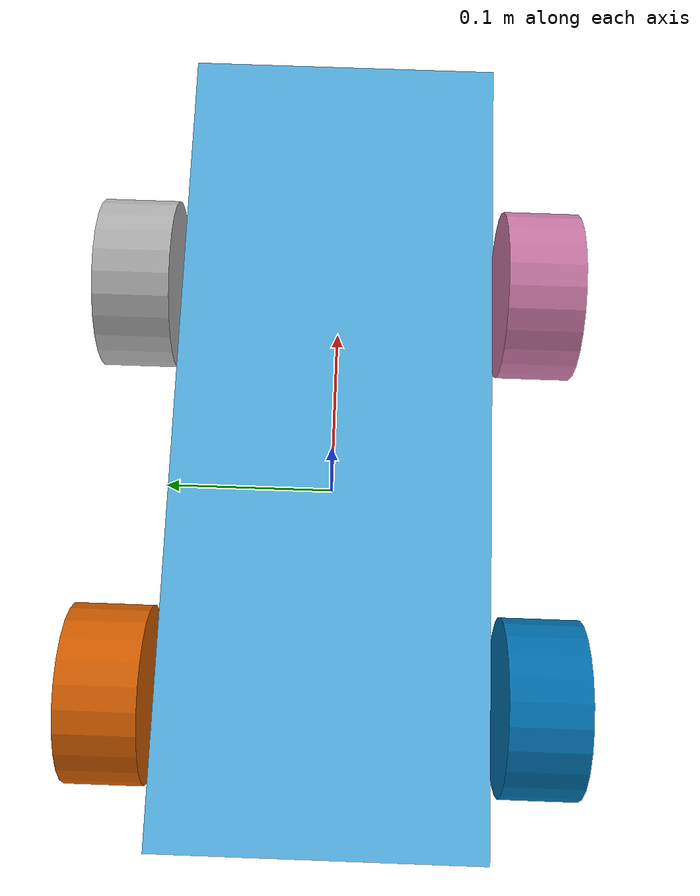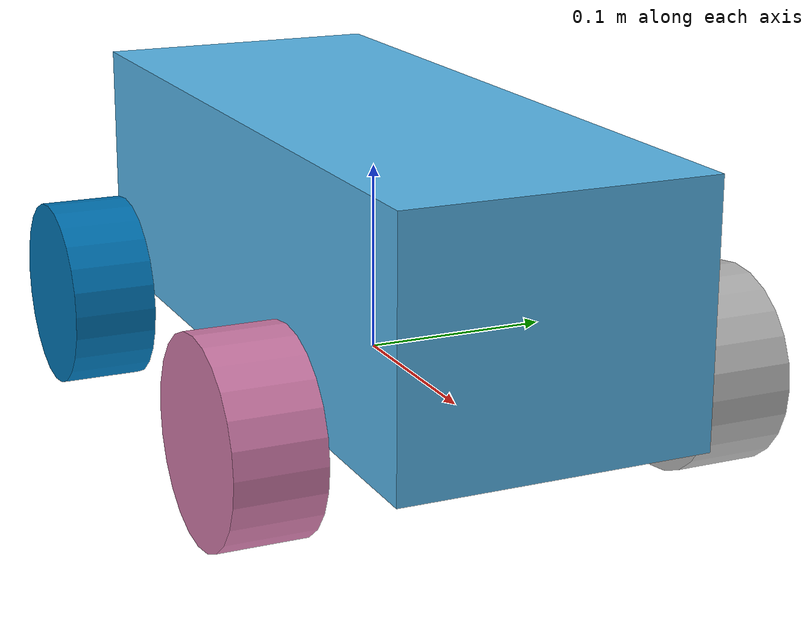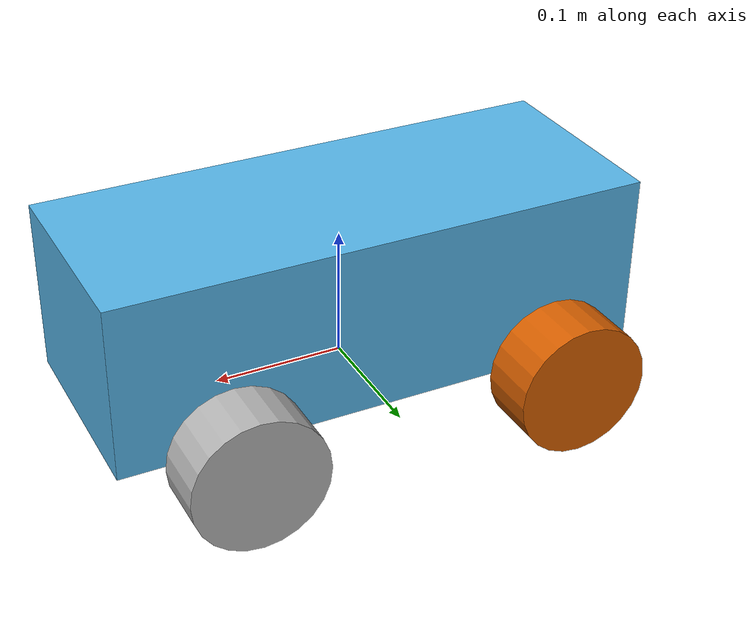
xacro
<?xml version="1.0"?>
<robot xmlns:xacro="http://www.ros.org/wiki/xacro" name="ackerman_robot">

  <!-- ================= PROPIEDADES ================= -->
  <xacro:property name="lx_box" value="${41/100}"/>
  <xacro:property name="ly_box" value="${16/100}"/>
  <xacro:property name="lz_box" value="${13.3/100}"/>

  <xacro:property name="off_x" value="${12.55/100}"/>
  <xacro:property name="off_y" value="${12.15/100}"/>
  <xacro:property name="off_z" value="${5.45/100}"/>
  <xacro:property name="off_z_chasi" value="${6.65/100}"/>

  <xacro:property name="rad_cil" value="${10.2/2/100}"/>
  <xacro:property name="altura" value="${4.5/100}"/>
  <!-- ================= MACROS ================= -->

  <!-- Ruedas -->
  <xacro:macro name="wheel_macro" params="w_name w_radius w_length">
    <link name="${w_name}">
      <visual>
        <geometry>
          <cylinder radius="${w_radius}" length="${w_length}"/>
        </geometry>
        <origin xyz="0 0 0" rpy="${pi/2} 0 0"/>
      </visual>

      <collision>
        <geometry>
          <cylinder radius="${w_radius}" length="${w_length}"/>
        </geometry>
        <origin xyz="0 0 0" rpy="${pi/2} 0 0"/>
      </collision>

      <inertial>
        <mass value="1.0"/>
        <origin xyz="0 0 0" rpy="0 0 0"/>
        <inertia ixx="0.01" ixy="0" ixz="0"
                 iyy="0.01" iyz="0"
                 izz="0.01"/>
      </inertial>
    </link>
  </xacro:macro>

  <!-- Steering links (dirección) -->
  <xacro:macro name="steering_macro" params="name">
    <link name="${name}">
      <visual>
        <geometry>
          <cylinder radius="0.02" length="0.05"/>
        </geometry>
        <origin xyz="0 0 0" rpy="0 0 0"/>
      </visual>

      <collision>
        <geometry>
          <cylinder radius="0.02" length="0.05"/>
        </geometry>
        <origin xyz="0 0 0" rpy="0 0 0"/>
      </collision>

      <inertial>
        <mass value="0.2"/>
        <origin xyz="0 0 0" rpy="0 0 0"/>
        <inertia ixx="0.0001" ixy="0" ixz="0"
                 iyy="0.0001" iyz="0"
                 izz="0.0001"/>
      </inertial>
    </link>
  </xacro:macro>

  <!-- ================= LINKS BASE ================= -->

  <link name="base_link"/>

  <link name="chassis_link">
    <visual>
      <geometry>
        <box size="${lx_box} ${ly_box} ${lz_box}"/>
      </geometry>
      <origin xyz="0 0 0" rpy="0 0 0"/>
    </visual>

    <collision>
      <geometry>
        <box size="${lx_box} ${ly_box} ${lz_box}"/>
      </geometry>
      <origin xyz="0 0 0" rpy="0 0 0"/>
    </collision>

    <inertial>
      <mass value="5.0"/>
      <origin xyz="0 0 0" rpy="0 0 0"/>
      <inertia ixx="0.2" ixy="0" ixz="0"
               iyy="0.2" iyz="0"
               izz="0.2"/>
    </inertial>
  </link>

  <!-- ================= JOINT BASE ================= -->

  <joint name="base_chassis_joint" type="fixed">
    <parent link="base_link"/>
    <child link="chassis_link"/>
    <origin xyz="0 0 ${off_z_chasi}" rpy="0 0 0"/>
  </joint>

  <!-- ================= STEERING LINKS ================= -->

  <xacro:steering_macro name="steering_FR_link"/>
  <xacro:steering_macro name="steering_FL_link"/>

  <!-- ================= JOINTS ================= -->

  <!-- Ruedas traseras -->
  <joint name="chassis_wheel_RR_joint" type="continuous">
    <parent link="chassis_link"/>
    <child link="rwheel_link"/>
    <origin xyz="-${off_x} -${off_y} -${off_z}" rpy="0 0 0"/>
    <axis xyz="0 1 0"/>
  </joint>

  <joint name="chassis_wheel_RL_joint" type="continuous">
    <parent link="chassis_link"/>
    <child link="rwheel_link2"/>
    <origin xyz="-${off_x} ${off_y} -${off_z}" rpy="0 0 0"/>
    <axis xyz="0 1 0"/>
  </joint>

  <!-- Dirección -->
  <joint name="chassis_rotate_FR_joint" type="continuous">
    <parent link="chassis_link"/>
    <child link="steering_FR_link"/>
    <origin xyz="${off_x} -${off_y} -${off_z}" rpy="0 0 0"/>
    <axis xyz="0 0 1"/>
  </joint>

  <joint name="chassis_rotate_FL_joint" type="continuous">
    <parent link="chassis_link"/>
    <child link="steering_FL_link"/>
    <origin xyz="${off_x} ${off_y} -${off_z}" rpy="0 0 0"/>
    <axis xyz="0 0 1"/>
  </joint>

  <!-- Ruedas delanteras -->
  <joint name="chassis_wheel_FR_joint" type="continuous">
    <parent link="steering_FR_link"/>
    <child link="rwheel_link3"/>
    <origin xyz="0 0 0" rpy="0 0 0"/>
    <axis xyz="0 1 0"/>
  </joint>

  <joint name="chassis_wheel_FL_joint" type="continuous">
    <parent link="steering_FL_link"/>
    <child link="rwheel_link4"/>
    <origin xyz="0 0 0" rpy="0 0 0"/>
    <axis xyz="0 1 0"/>
  </joint>

  <!-- ================= RUEDAS ================= -->

  <xacro:wheel_macro w_name="rwheel_link"  w_radius="${rad_cil}" w_length="${altura}"/>
  <xacro:wheel_macro w_name="rwheel_link2" w_radius="${rad_cil}" w_length="${altura}"/>
  <xacro:wheel_macro w_name="rwheel_link3" w_radius="${rad_cil}" w_length="${altura}"/>
  <xacro:wheel_macro w_name="rwheel_link4" w_radius="${rad_cil}" w_length="${altura}"/>

</robot>
